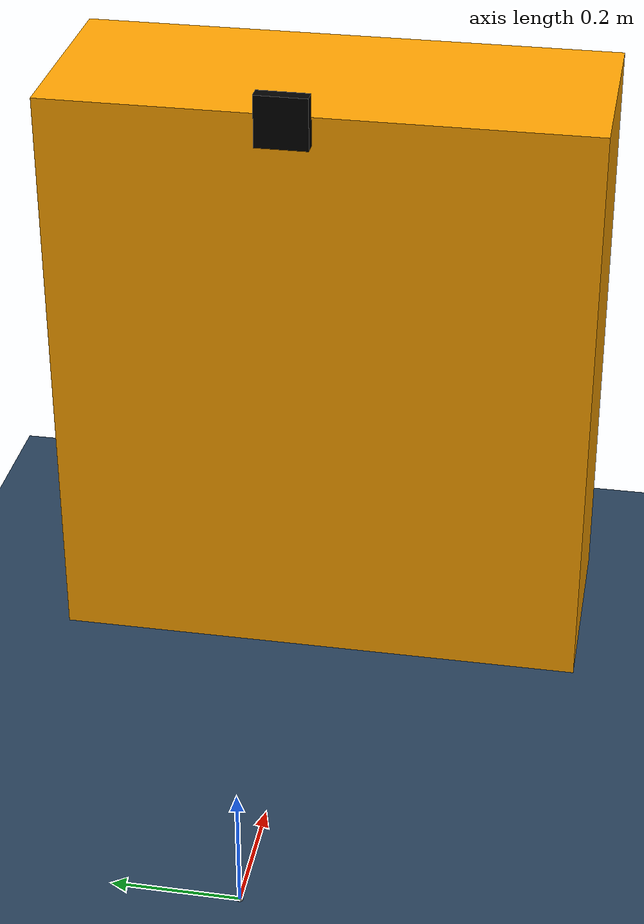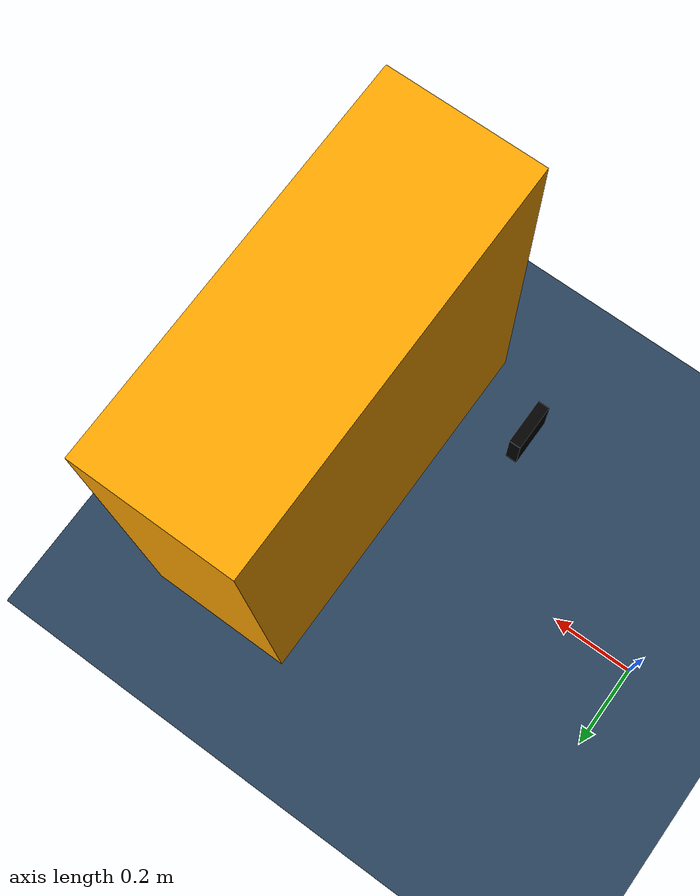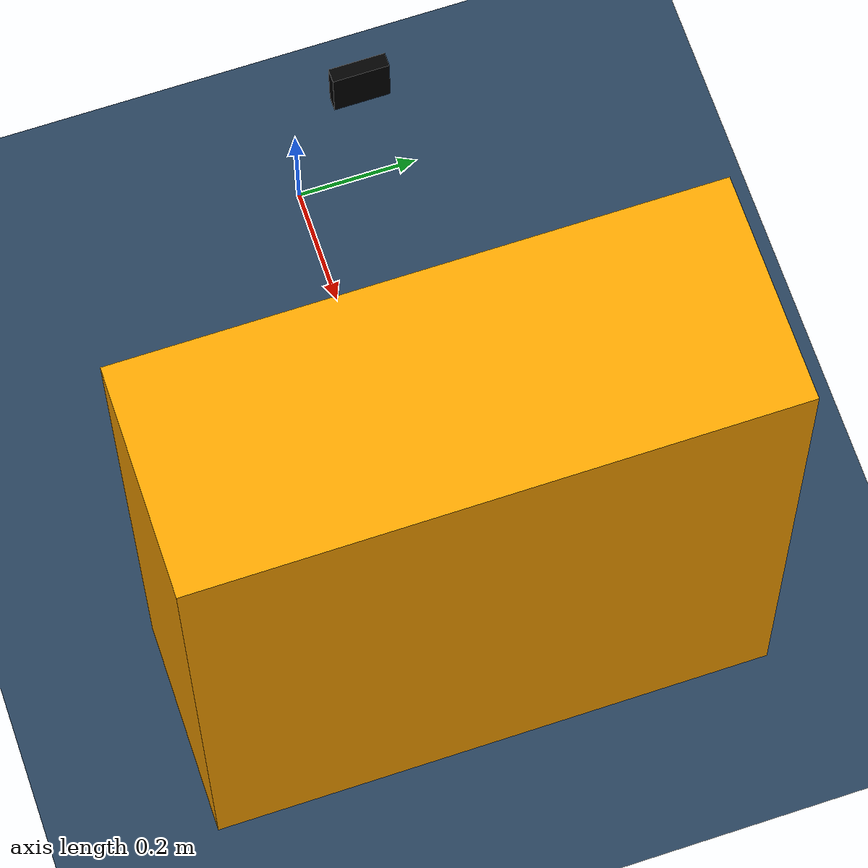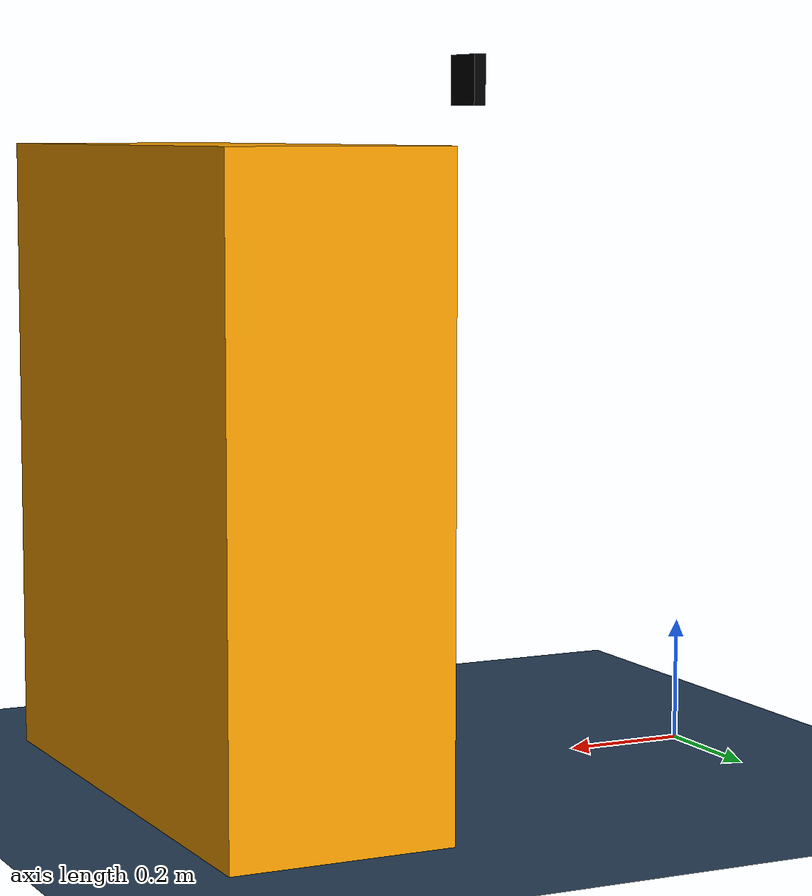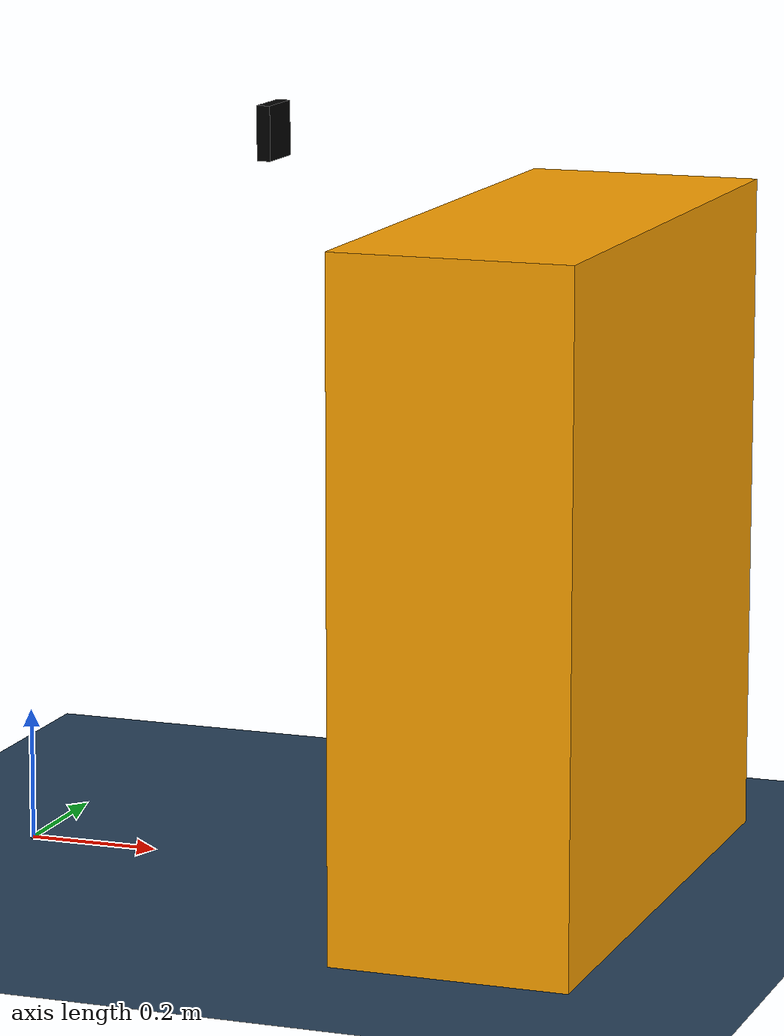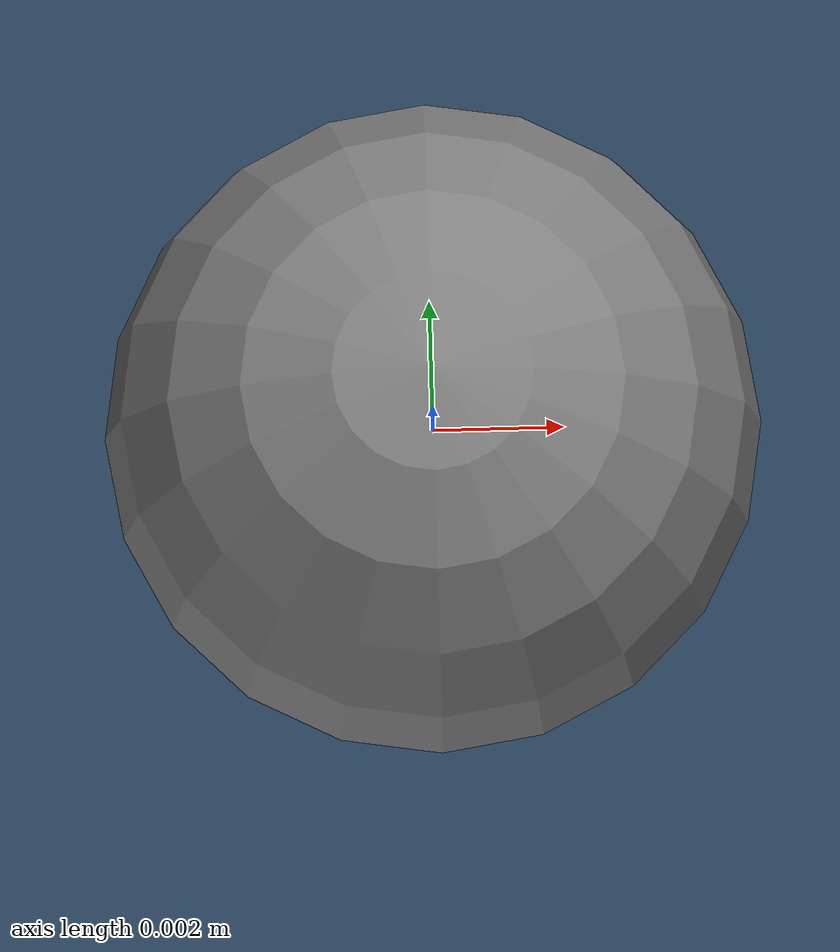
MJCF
<?xml version="1.0" encoding="utf-8"?>
<mujoco model="scene1">
  <compiler angle="radian" balanceinertia="true" inertiafromgeom="true"
    meshdir="/home/yinglong/Documents/research/task_motion_planning/infrastructure/motoman_ws/src/pracsys_vbnpm/"
    texturedir="/home/yinglong/Documents/research/task_motion_planning/infrastructure/motoman_ws/src/pracsys_vbnpm/"
    autolimits="true"/>

  <asset>
    <texture builtin="checker" height="512" name="grid" rgb1="0.1 0.2 0.3" rgb2="0.2 0.3 0.4" type="2d" width="512"/>
    <material name="grid" emission="1" reflectance="0" shininess="0" specular="0" texrepeat="0.5 0.5" texture="grid" texuniform="true"/>
    <mesh file="/home/yinglong/Documents/research/task_motion_planning/infrastructure/motoman_ws/src/pracsys_vbnpm/data/models/objects/ocrtoc/a_cups/collision_meshes/collision/collision.obj" name="a_cups_col" scale="1 1 1"/>
    <mesh file="/home/yinglong/Documents/research/task_motion_planning/infrastructure/motoman_ws/src/pracsys_vbnpm/data/models/objects/ocrtoc/a_cups/meshes/visual/visual.obj" name="a_cups_vis" scale="1 1 1"/>
    <texture file="/home/yinglong/Documents/research/task_motion_planning/infrastructure/motoman_ws/src/pracsys_vbnpm/data/models/objects/ocrtoc/a_cups/meshes/visual/texture_map.png" name="a_cups_vis" type="2d"/>
    <material name="a_cups_vis" texture="a_cups_vis"/>
    <mesh file="/home/yinglong/Documents/research/task_motion_planning/infrastructure/motoman_ws/src/pracsys_vbnpm/data/models/objects/ocrtoc/b_cups/collision_meshes/collision/collision.obj" name="b_cups_col" scale="1 1 1"/>
    <mesh file="/home/yinglong/Documents/research/task_motion_planning/infrastructure/motoman_ws/src/pracsys_vbnpm/data/models/objects/ocrtoc/b_cups/meshes/visual/visual.obj" name="b_cups_vis" scale="1 1 1"/>
    <texture file="/home/yinglong/Documents/research/task_motion_planning/infrastructure/motoman_ws/src/pracsys_vbnpm/data/models/objects/ocrtoc/b_cups/meshes/visual/texture_map.png" name="b_cups_vis" type="2d"/>
    <material name="b_cups_vis" texture="b_cups_vis"/>
    <mesh file="/home/yinglong/Documents/research/task_motion_planning/infrastructure/motoman_ws/src/pracsys_vbnpm/data/models/objects/ocrtoc/a_toy_airplane/collision_meshes/collision/collision.obj" name="a_toy_airplane_col" scale="1 1 1"/>
    <mesh file="/home/yinglong/Documents/research/task_motion_planning/infrastructure/motoman_ws/src/pracsys_vbnpm/data/models/objects/ocrtoc/a_toy_airplane/meshes/visual/visual.obj" name="a_toy_airplane_vis" scale="1 1 1"/>
    <texture file="/home/yinglong/Documents/research/task_motion_planning/infrastructure/motoman_ws/src/pracsys_vbnpm/data/models/objects/ocrtoc/a_toy_airplane/meshes/visual/texture_map.png" name="a_toy_airplane_vis" type="2d"/>
    <material name="a_toy_airplane_vis" texture="a_toy_airplane_vis"/>
    <mesh file="/home/yinglong/Documents/research/task_motion_planning/infrastructure/motoman_ws/src/pracsys_vbnpm/data/models/objects/ocrtoc/cracker_box/collision_meshes/collision/collision.obj" name="cracker_box_col" scale="1 1 1"/>
    <mesh file="/home/yinglong/Documents/research/task_motion_planning/infrastructure/motoman_ws/src/pracsys_vbnpm/data/models/objects/ocrtoc/cracker_box/meshes/visual/visual.obj" name="cracker_box_vis" scale="1 1 1"/>
    <texture file="/home/yinglong/Documents/research/task_motion_planning/infrastructure/motoman_ws/src/pracsys_vbnpm/data/models/objects/ocrtoc/cracker_box/meshes/visual/texture_map.png" name="cracker_box_vis" type="2d"/>
    <material name="cracker_box_vis" texture="cracker_box_vis"/>
  </asset>
  <worldbody>
    <geom condim="3" material="grid" name="floor" size="2 2 0.05" type="plane"/>
    <geom conaffinity="0" contype="0" group="1" material="grid" name="floor_vis" size="2 2 0.05" type="plane"/>
    <light castshadow="false" diffuse="1 1 1" dir="0 0 -1" directional="true" pos="-0.5 0.5 3"/>
    <body name="workspace" pos="-0.1 0 0" quat="1 0 0 0">
      <geom name="shelf_bottom" pos="0.925 0 0.5" rgba="1.0 0.64 0.0 1.0" size="0.175 0.45 0.5" type="box" quat="1 0 0 0"/>
      <geom conaffinity="0" contype="0" group="1" name="shelf_bottom_vis" pos="0.925 0 0.5" rgba="1.0 0.64 0.0 1.0" size="0.175 0.45 0.5" type="box" quat="1 0 0 0"/>
    </body>
    <body mocap="true" name="body_cam" pos="0.4 0 1.1" xyaxes="0 -1 0 0 0 1">
        <camera fovy="50" name="cam"/>
        <geom conaffinity="2" contype="2" name="geom_cam" rgba="0 0 0 1" size="0.04 0.04 0.01" type="box"/>
    </body>

    <body name="ee_position" pos="0 0 0" gravcomp="1">
      <camera name="cam0" pos="0 -0.3 0.3" xyaxes="1 0 0 0 0.7 0.7"/>
      <joint name="ee_position_x" type="slide"  pos="0 0 0" axis="1 0 0" ref="0" />
      <joint name="ee_position_y" type="slide"  pos="0 0 0" axis="0 1 0" ref="0" />
      <joint name="ee_position_z" type="slide"  pos="0 0 0" axis="0 0 1" ref="0" />
      <geom name="ee_position" type="sphere" size=".005" mass="1.0"/>
      <site name="tip" pos="0 0 0" size="0.001"/>
    </body>
  </worldbody>

  <actuator>

    <velocity name="ee_position_x_vel" joint="ee_position_x" kv="1000" ctrllimited="true" ctrlrange="-0.3 0.3"/>
    <velocity name="ee_position_y_vel" joint="ee_position_y" kv="1000" ctrllimited="true" ctrlrange="-0.3 0.3"/>
    <velocity name="ee_position_z_vel" joint="ee_position_z" kv="1000" ctrllimited="true" ctrlrange="-0.3 0.3"/>

    <!-- delta position by general -->

  </actuator>
</mujoco>
